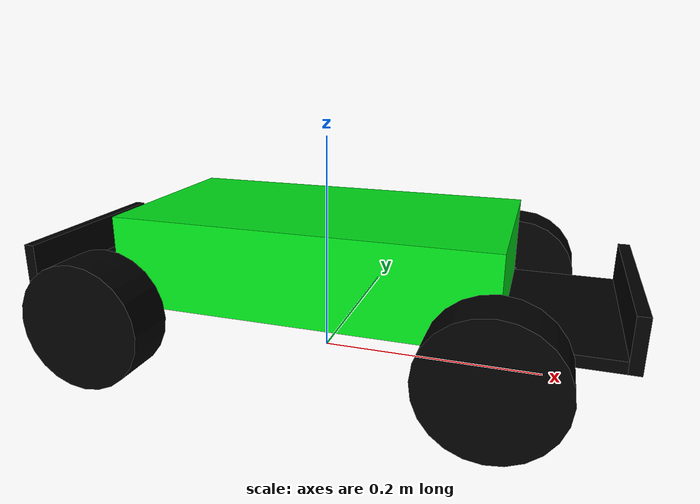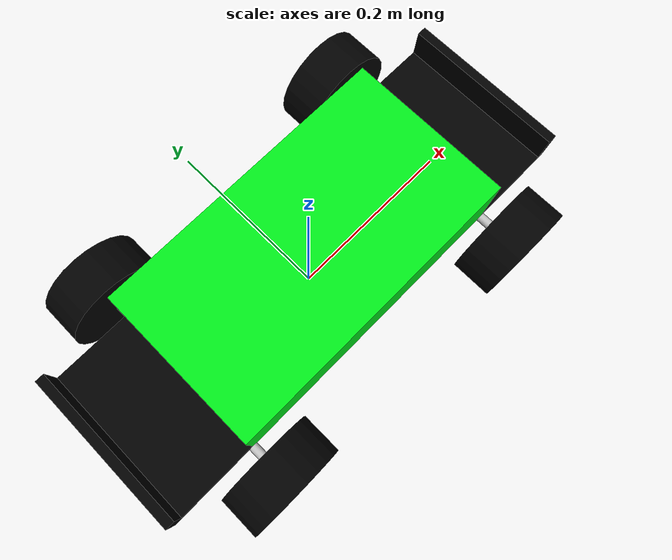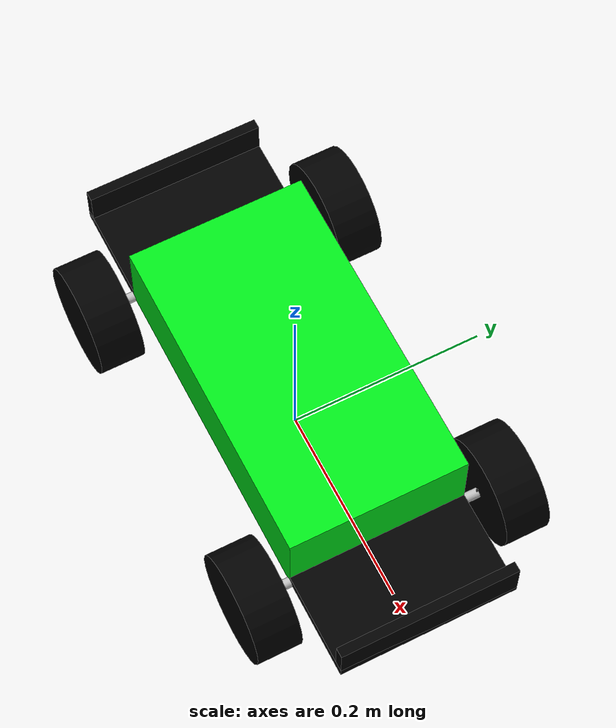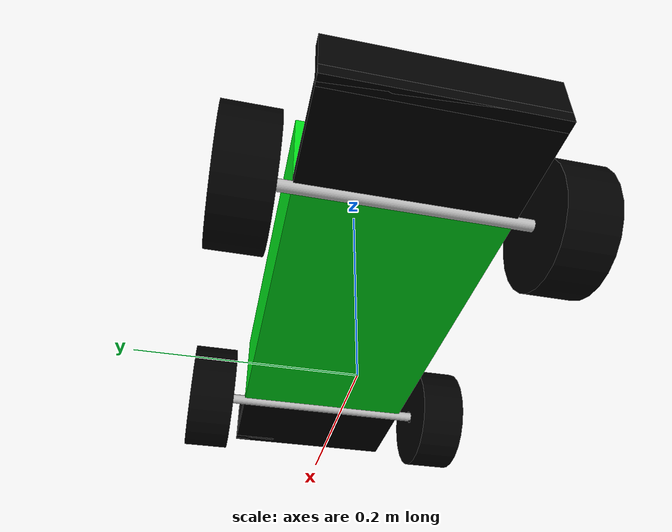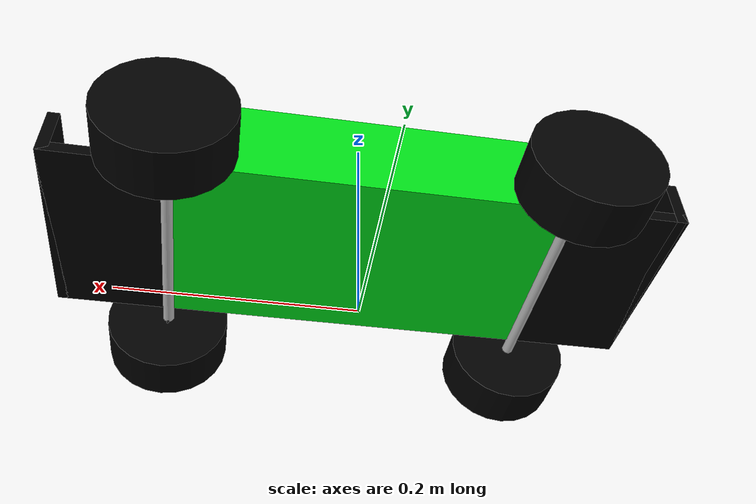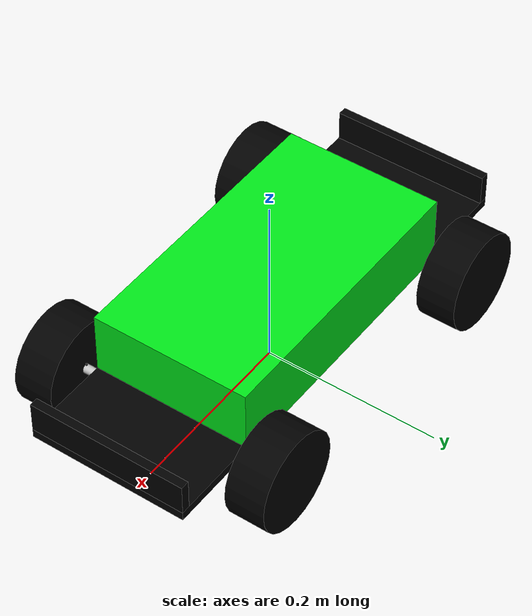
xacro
<?xml version="1.0"?>
<robot xmlns:xacro="http://www.ros.org/wiki/xacro">
  <xacro:arg name="wheel_diameter" default="0.11" />

  <xacro:include filename="inertial_macros.xacro" />

  <!-- Define robot constants -->
  <xacro:property name="wheel_mass" value="0.2" />
  <xacro:property name="chassis_mass" value="1.5" />
  <xacro:property name="axle_mass" value="0.2" />
  <xacro:property name="bumper_mass" value="0.2" />
  <xacro:property name="wheel_radius" value="${$(arg wheel_diameter)/2}" />
  <xacro:property name="wheel_width" value="0.045" />
  <xacro:property name="steering_kingpin_mass" value="0.001" />
  <xacro:property name="steering_kingpin_length" value="0.014" />
  <xacro:property name="steering_kingpin_radius" value="0.001" />
  <xacro:property name="wheelbase_length" value="0.33" />
  <xacro:property name="chassis_breadth" value="0.18" />
  <xacro:property name="chassis_length" value="${wheelbase_length}" />
  <xacro:property name="bumper_horiz_length" value="0.1" />
  <xacro:property name="bumper_vert_length" value="0.045" />
  <xacro:property name="bumper_thickness" value="0.01" />
  <xacro:property name="overall_body_length" value="${wheelbase_length+2*bumper_horiz_length}" />
  <xacro:property name="chassis_height" value="0.08" />
  <xacro:property name="wheelbase_breadth" value="0.21" />
  <xacro:property name="axle_radius" value="0.005" />

  <material name="black">
    <color rgba="0 0 0 1" />
  </material>
  <material name="lime">
    <color rgba="0 0.9 0.1 1" />
  </material>
  <material name="silver">
    <color rgba="0.75 0.75 0.75 1" />
  </material>
  <material name="neon_blue">
    <color rgba="0.01 0.54 1 1" />
  </material>

  <!-- Robot Base -->
  <link name="base_link" />

  <link name="chassis_link">
    <visual>
      <origin xyz="0 0 0" rpy="0 0 0" />
      <geometry>
        <box size="${chassis_length} ${chassis_breadth} ${chassis_height}" />
      </geometry>
      <material name="lime" />
    </visual>
    <collision>
      <geometry>
        <box size="${chassis_length} ${chassis_breadth} ${chassis_height}" />
      </geometry>
    </collision>
    <xacro:inertial_box mass="${chassis_mass}" length="${chassis_length}"
      breadth="${chassis_breadth}" height="${chassis_height}">
      <origin xyz="0 0 0" rpy="0 0 0" />
    </xacro:inertial_box>
  </link>

  <joint name="chassis_joint" type="fixed">
    <parent link="base_link" />
    <child link="chassis_link" />
    <origin rpy="0 0 0" xyz="0 0 ${wheel_radius+chassis_height/2}" />
  </joint>

  <!-- Front bumper -->
  <link name="front_bumper_link">
    <!-- Horizontal bumper bar -->
    <visual>
      <origin xyz="${bumper_horiz_length/2} 0 ${-chassis_height/2+bumper_thickness/2}" rpy="0 0 0" />
      <geometry>
        <box size="${bumper_horiz_length} ${chassis_breadth} ${bumper_thickness}" />
      </geometry>
      <material name="black" />
    </visual>
    <!-- Vertical bumper bar -->
    <visual>
      <origin
        xyz="${bumper_horiz_length - bumper_thickness/2} 0 ${-chassis_height/2+bumper_vert_length/2}"
        rpy="0 0 0" />
      <geometry>
        <box size="${bumper_thickness} ${chassis_breadth} ${bumper_vert_length}" />
      </geometry>
      <material name="black" />
    </visual>
    <!-- Combined collision geometry -->
    <collision>
      <origin xyz="${bumper_horiz_length/2} 0 ${-chassis_height/2+bumper_vert_length/2}" rpy="0 0 0" />
      <geometry>
        <box size="${bumper_horiz_length} ${chassis_breadth} ${bumper_vert_length}" />
      </geometry>
    </collision>
    <!-- Inertial properties: half of the original bumper mass -->
    <xacro:inertial_box mass="${bumper_mass/2}" length="${bumper_horiz_length}"
      breadth="${chassis_breadth}" height="${bumper_vert_length}">
      <origin xyz="0 0 0" rpy="0 0 0" />
    </xacro:inertial_box>
  </link>

  <joint name="front_bumper_joint" type="fixed">
    <parent link="chassis_link" />
    <child link="front_bumper_link" />
    <!-- Attach at the front edge of the chassis -->
    <origin xyz="${chassis_length/2} 0 0" rpy="0 0 0" />
  </joint>

  <!-- Rear bumper -->
  <link name="rear_bumper_link">
    <!-- Horizontal bumper bar -->
    <visual>
      <origin xyz="${-bumper_horiz_length/2} 0 ${-chassis_height/2+bumper_thickness/2}" rpy="0 0 0" />
      <geometry>
        <box size="${bumper_horiz_length} ${chassis_breadth} ${bumper_thickness}" />
      </geometry>
      <material name="black" />
    </visual>
    <!-- Vertical bumper bar -->
    <visual>
      <origin
        xyz="${-bumper_horiz_length + bumper_thickness/2} 0 ${-chassis_height/2+bumper_vert_length/2}"
        rpy="0 0 0" />
      <geometry>
        <box size="${bumper_thickness} ${chassis_breadth} ${bumper_vert_length}" />
      </geometry>
      <material name="black" />
    </visual>
    <collision>
      <origin xyz="${-bumper_horiz_length/2} 0 ${-chassis_height/2+bumper_vert_length/2}"
        rpy="0 0 0" />
      <geometry>
        <box size="${bumper_horiz_length} ${chassis_breadth} ${bumper_vert_length}" />
      </geometry>
    </collision>
    <xacro:inertial_box mass="${bumper_mass/2}" length="${bumper_horiz_length}"
      breadth="${chassis_breadth}" height="${bumper_vert_length}">
      <origin xyz="0 0 0" rpy="0 0 0" />
    </xacro:inertial_box>
  </link>

  <joint name="rear_bumper_joint" type="fixed">
    <parent link="chassis_link" />
    <child link="rear_bumper_link" />
    <origin xyz="${-chassis_length/2} 0 0" rpy="0 0 0" />
  </joint>

  <!-- Front end link -->
  <link name="front_end_link" />

  <joint name="front_end_joint" type="fixed">
    <parent link="front_bumper_link" />
    <child link="front_end_link" />
    <!-- Attach at the extreme front of the bumper -->
    <origin xyz="${bumper_horiz_length} 0 0" rpy="0 0 0" />
  </joint>

  <!-- Rear end link -->
  <link name="rear_end_link" />

  <joint name="rear_end_joint" type="fixed">
    <parent link="rear_bumper_link" />
    <child link="rear_end_link" />
    <!-- Attach at the extreme rear of the bumper -->
    <origin xyz="${-bumper_horiz_length} 0 0" rpy="0 0 0" />
  </joint>

  <!-- Left end link -->
  <link name="left_end_link" />

  <joint name="left_end_joint" type="fixed">
    <parent link="chassis_link" />
    <child link="left_end_link" />
    <!-- Attach at the extreme left of the front end -->
    <origin xyz="0 ${wheelbase_breadth/2+wheel_width} 0" rpy="0 0 0" />
  </joint>

  <!-- Right end link -->
  <link name="right_end_link" />

  <joint name="right_end_joint" type="fixed">
    <parent link="chassis_link" />
    <child link="right_end_link" />
    <!-- Attach at the extreme right of the front end -->
    <origin xyz="0 ${-wheelbase_breadth/2-wheel_width} 0" rpy="0 0 0" />
  </joint>

  <!-- Rear axle -->
  <link name="rear_axle_link">
    <visual>
      <geometry>
        <cylinder length="${wheelbase_breadth}" radius="${axle_radius}" />
      </geometry>
      <material name="silver" />
    </visual>
    <collision>
      <geometry>
        <cylinder length="${wheelbase_breadth}" radius="${axle_radius}" />
      </geometry>
    </collision>
    <xacro:inertial_cylinder mass="${axle_mass}" radius="${axle_radius}"
      length="${wheelbase_breadth}">
      <origin xyz="0 0 0" rpy="0 0 0" />
    </xacro:inertial_cylinder>
  </link>

  <joint name="rear_axle_joint" type="fixed">
    <parent link="chassis_link" />
    <child link="rear_axle_link" />
    <origin xyz="${-wheelbase_length/2} 0 ${-chassis_height/2}" rpy="${-pi/2} 0 0" />
  </joint>

  <!-- Left rear wheel -->
  <link name="left_rear_wheel_link">
    <visual>
      <geometry>
        <cylinder length="${wheel_width}" radius="${wheel_radius}" />
      </geometry>
      <material name="black">
        <color rgba="0 0 0 1" />
      </material>
    </visual>
    <collision>
      <geometry>
        <cylinder length="${wheel_width}" radius="${wheel_radius}" />
      </geometry>
    </collision>
    <xacro:inertial_cylinder mass="${wheel_mass}" radius="${wheel_radius}" length="${wheel_width}">
      <origin xyz="0 0 0" rpy="0 0 0" />
    </xacro:inertial_cylinder>
  </link>

  <joint name="left_rear_wheel_joint" type="continuous">
    <axis xyz="0 0 1" />
    <parent link="rear_axle_link" />
    <child link="left_rear_wheel_link" />
    <origin xyz="0 0 ${wheelbase_breadth/2+wheel_width/2}" rpy="0 0 0" />
    <limit effort="10000" velocity="500" />
  </joint>

  <gazebo reference="left_rear_wheel_link">
    <material>Gazebo/DarkGrey</material>
  </gazebo>

  <!-- Right rear wheel -->
  <link name="right_rear_wheel_link">
    <visual>
      <geometry>
        <cylinder length="${wheel_width}" radius="${wheel_radius}" />
      </geometry>
      <material name="black">
        <color rgba="0 0 0 1" />
      </material>
    </visual>
    <collision>
      <geometry>
        <cylinder length="${wheel_width}" radius="${wheel_radius}" />
      </geometry>
    </collision>
    <xacro:inertial_cylinder mass="${wheel_mass}" radius="${wheel_radius}" length="${wheel_width}">
      <origin xyz="0 0 0" rpy="0 0 0" />
    </xacro:inertial_cylinder>
  </link>

  <joint name="right_rear_wheel_joint" type="continuous">
    <axis xyz="0 0 1" />
    <parent link="rear_axle_link" />
    <child link="right_rear_wheel_link" />
    <origin xyz="0 0 ${-wheelbase_breadth/2-wheel_width/2}" rpy="0 0 0" />
    <limit effort="10000" velocity="500" />
  </joint>

  <gazebo reference="right_front_wheel_link">
    <material>Gazebo/DarkGrey</material>
  </gazebo>

  <!-- Front axle -->
  <link name="front_axle_link">
    <visual>
      <geometry>
        <cylinder length="${wheelbase_breadth}" radius="${axle_radius}" />
      </geometry>
      <material name="silver" />
    </visual>
    <collision>
      <geometry>
        <cylinder length="${wheelbase_breadth}" radius="${axle_radius}" />
      </geometry>
    </collision>
    <xacro:inertial_cylinder mass="${axle_mass}" radius="${axle_radius}"
      length="${wheelbase_breadth}">
      <origin xyz="0 0 0" rpy="0 0 0" />
    </xacro:inertial_cylinder>
  </link>

  <joint name="front_axle_joint" type="fixed">
    <parent link="chassis_link" />
    <child link="front_axle_link" />
    <origin xyz="${wheelbase_length/2} 0 ${-chassis_height/2}" rpy="${-pi/2} 0 0" />
  </joint>

  <!-- Left front wheel steering -->
  <link name="left_front_wheel_steering_link">
    <visual>
      <geometry>
        <cylinder length="${steering_kingpin_length}" radius="${steering_kingpin_radius}" />
      </geometry>
      <material name="black" />
    </visual>
    <collision>
      <geometry>
        <cylinder length="${steering_kingpin_length}" radius="${steering_kingpin_radius}" />
      </geometry>
    </collision>
    <xacro:inertial_cylinder mass="${steering_kingpin_mass}" radius="${steering_kingpin_radius}"
      length="${steering_kingpin_length}">
      <origin xyz="0 0 0" rpy="0 0 0" />
    </xacro:inertial_cylinder>
  </link>

  <joint name="left_front_wheel_steering_joint" type="revolute">
    <axis xyz="0 0 1" />
    <limit lower="${-pi/3}" upper="${pi/3}" effort="1000000" velocity="500" />
    <parent link="front_axle_link" />
    <child link="left_front_wheel_steering_link" />
    <origin xyz="0 0 ${wheelbase_breadth/2-steering_kingpin_radius}" rpy="${pi/2} 0 0" />
  </joint>

  <!-- Left front wheel -->
  <link name="left_front_wheel_link">
    <visual>
      <geometry>
        <cylinder length="${wheel_width}" radius="${wheel_radius}" />
      </geometry>
      <material name="black" />
    </visual>
    <collision>
      <geometry>
        <cylinder length="${wheel_width}" radius="${wheel_radius}" />
      </geometry>
    </collision>
    <xacro:inertial_cylinder mass="${wheel_mass}" radius="${wheel_radius}" length="${wheel_width}">
      <origin xyz="0 0 0" rpy="0 0 0" />
    </xacro:inertial_cylinder>
  </link>

  <joint name="left_front_wheel_joint" type="continuous">
    <axis xyz="0 0 1" />
    <parent link="left_front_wheel_steering_link" />
    <child link="left_front_wheel_link" />
    <origin xyz="0 ${steering_kingpin_radius+wheel_width/2} 0" rpy="${-pi/2} 0 0" />
    <limit effort="10000" velocity="500" />
  </joint>

  <gazebo reference="left_front_wheel_link">
    <material>Gazebo/DarkGrey</material>
  </gazebo>

  <!-- Right front wheel steering -->
  <link name="right_front_wheel_steering_link">
    <visual>
      <geometry>
        <cylinder length="${steering_kingpin_length}" radius="${steering_kingpin_radius}" />
      </geometry>
      <material name="black" />
    </visual>
    <collision>
      <geometry>
        <cylinder length="${steering_kingpin_length}" radius="${steering_kingpin_radius}" />
      </geometry>
    </collision>
    <xacro:inertial_cylinder mass="${steering_kingpin_mass}" radius="${steering_kingpin_radius}"
      length="${steering_kingpin_length}">
      <origin xyz="0 0 0" rpy="0 0 0" />
    </xacro:inertial_cylinder>
  </link>

  <joint name="right_front_wheel_steering_joint" type="revolute">
    <axis xyz="0 0 1" />
    <limit lower="${-pi/3}" upper="${pi/3}" effort="1000000" velocity="500" />
    <parent link="front_axle_link" />
    <child link="right_front_wheel_steering_link" />
    <origin xyz="0 0 ${-wheelbase_breadth/2+steering_kingpin_radius}" rpy="${pi/2} 0 0" />
  </joint>

  <!-- Right front wheel -->
  <link name="right_front_wheel_link">
    <visual>
      <geometry>
        <cylinder length="${wheel_width}" radius="${wheel_radius}" />
      </geometry>
      <material name="black" />
    </visual>
    <collision>
      <geometry>
        <cylinder length="${wheel_width}" radius="${wheel_radius}" />
      </geometry>
    </collision>
    <xacro:inertial_cylinder mass="${wheel_mass}" radius="${wheel_radius}" length="${wheel_width}">
      <origin xyz="0 0 0" rpy="0 0 0" />
    </xacro:inertial_cylinder>
  </link>

  <joint name="right_front_wheel_joint" type="continuous">
    <axis xyz="0 0 1" />
    <parent link="right_front_wheel_steering_link" />
    <child link="right_front_wheel_link" />
    <origin xyz="0 ${-steering_kingpin_radius-wheel_width/2} 0" rpy="${-pi/2} 0 0" />
    <limit effort="10000" velocity="500" />
  </joint>

  <gazebo reference="right_front_wheel_link">
    <material>Gazebo/DarkGrey</material>
  </gazebo>
</robot>

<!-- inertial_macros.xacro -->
<robot xmlns:xacro="http://www.ros.org/wiki/xacro" >

    <!-- Specify some standard inertial calculations https://en.wikipedia.org/wiki/List_of_moments_of_inertia -->
    <!-- These make use of xacro's mathematical functionality -->

    <xacro:macro name="inertial_sphere" params="mass radius *origin">
        <inertial>
            <xacro:insert_block name="origin"/>
            <mass value="${mass}" />
            <inertia ixx="${(2/5) * mass * (radius*radius)}" ixy="0.0" ixz="0.0"
                    iyy="${(2/5) * mass * (radius*radius)}" iyz="0.0"
                    izz="${(2/5) * mass * (radius*radius)}" />
        </inertial>
    </xacro:macro>

    <xacro:macro name="inertial_box" params="mass length breadth height *origin">
        <inertial>
            <xacro:insert_block name="origin"/>
            <mass value="${mass}" />
            <inertia ixx="${(1/12) * mass * (breadth*breadth+height*height)}" ixy="0.0" ixz="0.0"
                    iyy="${(1/12) * mass * (length*length+height*height)}" iyz="0.0"
                    izz="${(1/12) * mass * (length*length+breadth*breadth)}" />
        </inertial>
    </xacro:macro>

    <xacro:macro name="inertial_cylinder" params="mass length radius *origin">
        <inertial>
            <xacro:insert_block name="origin"/>
            <mass value="${mass}" />
            <inertia ixx="${(1/12) * mass * (3*radius*radius + length*length)}" ixy="0.0" ixz="0.0"
                    iyy="${(1/12) * mass * (3*radius*radius + length*length)}" iyz="0.0"
                    izz="${(1/2) * mass * (radius*radius)}" />
        </inertial>
    </xacro:macro>

</robot>
